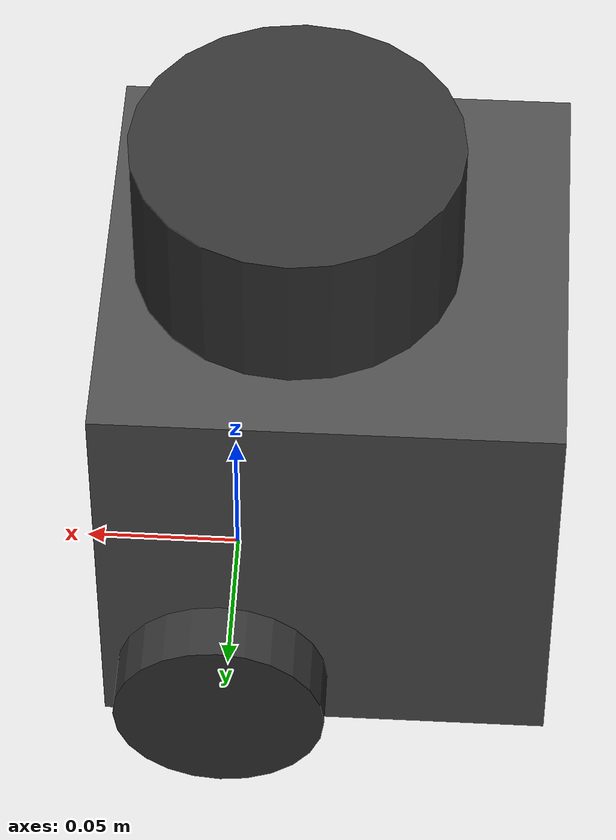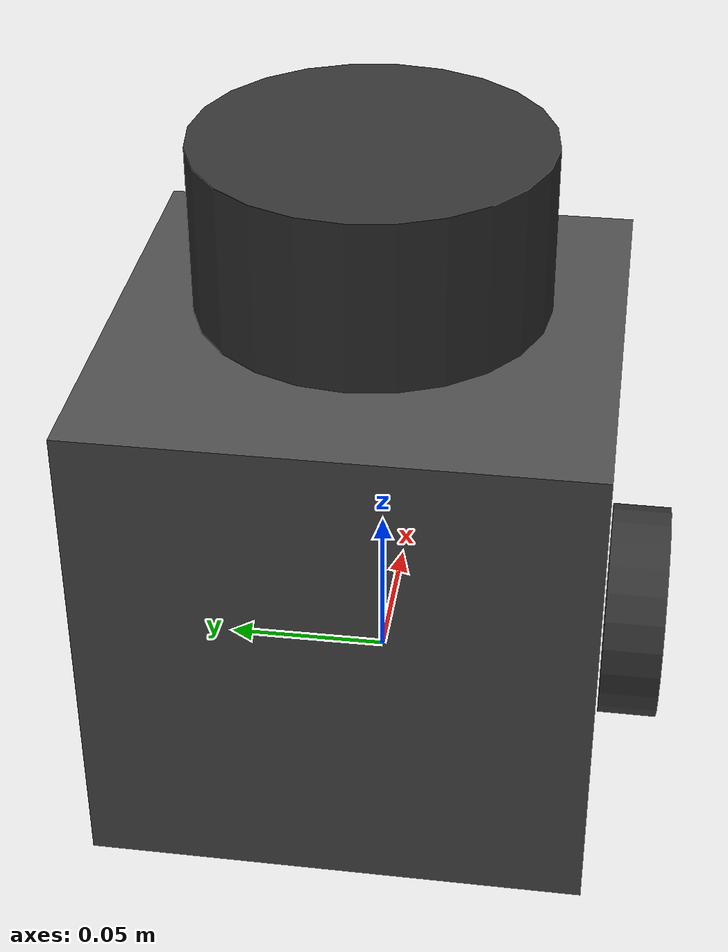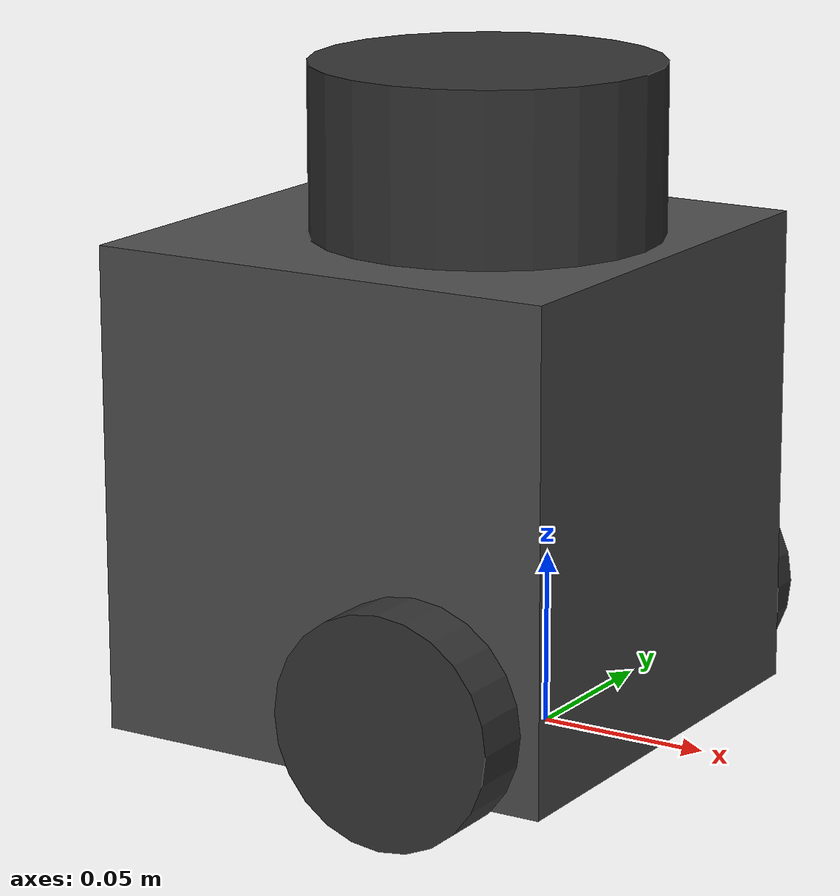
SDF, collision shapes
<?xml version="1.0" ?>
<sdf version="1.5">
  <model name="turtlebot3_burger">
    <pose>0.0 0.0 0.0 0.0 0.0 0.0</pose>
    <link name="base_footprint"/>
    <link name="base_link">
      <inertial>
        <pose>-0.064 0 0.070 0 0 0</pose>
        <inertia><ixx>1.95e-02</ixx><ixy>0</ixy><ixz>0</ixz><iyy>1.95e-02</iyy><iyz>0</iyz><izz>1.95e-02</izz></inertia>
        <mass>0.825</mass>
      </inertial>
      <collision name="base_collision">
        <pose>-0.032 0 0.070 0 0 0</pose>
        <geometry><box><size>0.14 0.14 0.14</size></box></geometry>
      </collision>
      <visual name="base_visual">
        <pose>-0.032 0 0 0 0 0</pose>
        <geometry>
          <mesh><uri>model://turtlebot3_common/meshes/bases/burger_base.stl</uri><scale>0.001 0.001 0.001</scale></mesh>
        </geometry>
        <material><ambient>0.3 0.3 0.3 1.0</ambient><diffuse>0.3 0.3 0.3 1.0</diffuse></material>
      </visual>
      <!-- CUSTOM ARUCO MARKER PLATE -->
      <visual name="aruco_visual">
        <pose>0 0 0.2 0 0 0</pose> <!-- Positioned 20cm up (above LIDAR) -->
        <geometry><box><size>0.5 0.5 0.001</size></box></geometry> <!-- 50cm x 50cm Plate -->
        <material>
          <ambient>1 1 1 1</ambient><diffuse>1 1 1 1</diffuse><specular>0 0 0 1</specular>
          <pbr><metal>
              <albedo_map>model://turtlebot3_burger_aruco/materials/textures/aruco_marker_0.png</albedo_map>
          </metal></pbr>
        </material>
      </visual>
    </link>
    <link name="imu_link">
      <sensor name="tb3_imu" type="imu">
        <always_on>true</always_on><update_rate>200</update_rate><topic>imu</topic>
        <pose>-0.032 0 0.068 0 0 0</pose>
      </sensor>
    </link>
    <link name="base_scan">
      <inertial><pose>-0.02 0 0.161 0 0 0</pose><inertia><ixx>0.001</ixx><ixy>0</ixy><ixz>0</ixz><iyy>0.001</iyy><iyz>0</iyz><izz>0.001</izz></inertia><mass>0.114</mass></inertial>
      <collision name="lidar_sensor_collision">
        <pose>-0.02 0 0.161 0 0 0</pose>
        <geometry><cylinder><radius>0.05</radius><length>0.055</length></cylinder></geometry>
      </collision>
      <visual name="lidar_sensor_visual">
        <pose>-0.032 0 0.171 0 0 0</pose>
        <geometry><mesh><uri>model://turtlebot3_common/meshes/sensors/lds.stl</uri><scale>0.001 0.001 0.001</scale></mesh></geometry>
        <material><ambient>0.2 0.2 0.2 1.0</ambient><diffuse>0.2 0.2 0.2 1.0</diffuse></material>
      </visual>
      <sensor name="hls_lfcd_lds" type="gpu_lidar">
        <always_on>true</always_on><visualize>true</visualize><pose>-0.032 0 0.171 0 0 0</pose><topic>scan</topic><gz_frame_id>base_scan</gz_frame_id>
        <lidar><scan><horizontal><samples>360</samples><resolution>1</resolution><min_angle>0</min_angle><max_angle>6.28</max_angle></horizontal></scan><range><min>0.12</min><max>3.5</max></range></lidar>
      </sensor>
    </link>
    <link name="wheel_left_link">
      <inertial><pose>0 0.08 0.023 -1.57 0 0</pose><inertia><ixx>1.11e-05</ixx><ixy>0</ixy><ixz>0</ixz><iyy>1.11e-05</iyy><iyz>0</iyz><izz>2.07e-05</izz></inertia><mass>0.028</mass></inertial>
      <collision name="wheel_left_collision"><pose>0 0.08 0.023 -1.57 0 0</pose><geometry><cylinder><radius>0.033</radius><length>0.018</length></cylinder></geometry><surface><friction><ode><mu>1000</mu><mu2>1000</mu2></ode></friction></surface></collision>
      <visual name="wheel_left_visual"><pose>0 0.08 0.023 0 0 0</pose><geometry><mesh><uri>model://turtlebot3_common/meshes/wheels/left_tire.stl</uri><scale>0.001 0.001 0.001</scale></mesh></geometry><material><ambient>0.2 0.2 0.2 1</ambient><diffuse>0.2 0.2 0.2 1</diffuse></material></visual>
    </link>
    <link name="wheel_right_link">
      <inertial><pose>0 -0.08 0.023 -1.57 0 0</pose><inertia><ixx>1.11e-05</ixx><ixy>0</ixy><ixz>0</ixz><iyy>1.11e-05</iyy><iyz>0</iyz><izz>2.07e-05</izz></inertia><mass>0.028</mass></inertial>
      <collision name="wheel_right_collision"><pose>0 -0.08 0.023 -1.57 0 0</pose><geometry><cylinder><radius>0.033</radius><length>0.018</length></cylinder></geometry><surface><friction><ode><mu>1000</mu><mu2>1000</mu2></ode></friction></surface></collision>
      <visual name="wheel_right_visual"><pose>0 -0.08 0.023 0 0 0</pose><geometry><mesh><uri>model://turtlebot3_common/meshes/wheels/right_tire.stl</uri><scale>0.001 0.001 0.001</scale></mesh></geometry><material><ambient>0.2 0.2 0.2 1</ambient><diffuse>0.2 0.2 0.2 1</diffuse></material></visual>
    </link>
    <link name='caster_back_link'>
      <pose>-0.081 0 -0.004 -1.57 0 0</pose>
      <inertial><mass>0.005</mass><inertia><ixx>0.001</ixx><ixy>0</ixy><ixz>0</ixz><iyy>0.001</iyy><iyz>0</iyz><izz>0.001</izz></inertia></inertial>
      <collision name='collision'><geometry><sphere><radius>0.005</radius></sphere></geometry><surface><contact><ode><soft_cfm>0</soft_cfm><soft_erp>0.2</soft_erp><kp>1e+5</kp><kd>1</kd></ode></contact></surface></collision>
    </link>
    <joint name="base_joint" type="fixed"><parent>base_footprint</parent><child>base_link</child><pose>0.0 0.0 0.010 0 0 0</pose></joint>
    <joint name="wheel_left_joint" type="revolute"><parent>base_link</parent><child>wheel_left_link</child><pose>0.0 0.08 0.023 -1.57 0 0</pose><axis><xyz>0 0 1</xyz></axis></joint>
    <joint name="wheel_right_joint" type="revolute"><parent>base_link</parent><child>wheel_right_link</child><pose>0.0 -0.08 0.023 -1.57 0 0</pose><axis><xyz>0 0 1</xyz></axis></joint>
    <joint name='caster_back_joint' type='ball'><parent>base_link</parent><child>caster_back_link</child></joint>
    <joint name="imu_joint" type="fixed"><parent>base_link</parent><child>imu_link</child><pose>-0.032 0 0.068 0 0 0</pose><axis><xyz>0 0 1</xyz></axis></joint>
    <joint name="lidar_joint" type="fixed"><parent>base_link</parent><child>base_scan</child><pose>-0.032 0 0.171 0 0 0</pose><axis><xyz>0 0 1</xyz></axis></joint>
    <plugin filename="gz-sim-diff-drive-system" name="gz::sim::systems::DiffDrive">
      <left_joint>wheel_left_joint</left_joint><right_joint>wheel_right_joint</right_joint>
      <wheel_separation>0.160</wheel_separation><wheel_radius>0.033</wheel_radius>
      <max_linear_acceleration>1.0</max_linear_acceleration>
      <topic>/cmd_vel</topic>
      <odom_topic>odom</odom_topic><frame_id>odom</frame_id><child_frame_id>base_footprint</child_frame_id>
      <tf_topic>/tf</tf_topic>
    </plugin>
    <plugin filename="gz-sim-joint-state-publisher-system" name="gz::sim::systems::JointStatePublisher">
      <topic>joint_states</topic><joint_name>wheel_left_joint</joint_name><joint_name>wheel_right_joint</joint_name>
    </plugin>
  </model>
</sdf>
